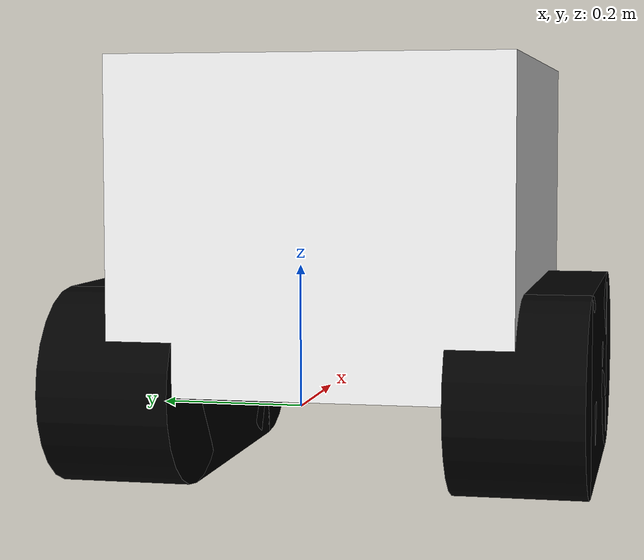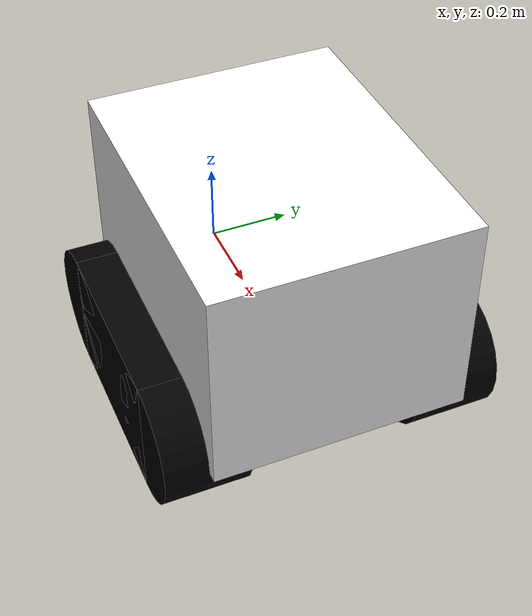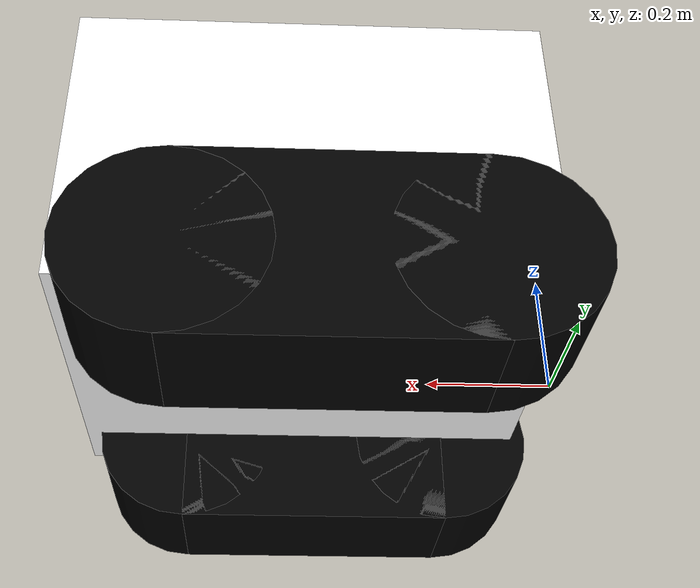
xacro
<?xml version="1.0"?>
<robot xmlns:xacro="http://www.ros.org/wiki/xacro">

<xacro:include filename="inertial_macros.xacro"/>

    <material name = "white">
        <color rgba= "1 1 1 1" />
    </material>

    <material name = "black">
        <color rgba= "0 0 0 1" />
    </material>

    <material name = "blue">
        <color rgba= ".2 .2 1 1" />
    </material>

    <link name="base_link"></link>

    <!-- BASE_FOOTPRINT LINK -->

    <!-- Assuming zed movement is negligable -->

    <joint name="base_footprint_joint" type="fixed">
        <parent link="base_link"/>
        <child link="base_footprint"/>
        <origin xyz="0 0 0" rpy="0 0 0"/>
    </joint>

    <link name="base_footprint">
    </link>

    <!-- CHASSIS LINK -->

    <joint name="chassis_joint" type="fixed">
        <parent link="base_link"/>
        <child link="chassis"/>
        <origin xyz="-0.1 0 0"/>
    </joint>

    <link name="chassis">
        <visual>
            <origin xyz=".5 0 .25"/>
            <geometry>
                <box size=".75 .6 0.5"/>
            </geometry>
            <material name="white"/>
        </visual>
        <collision>
            <origin xyz=".5 0 .25"/>
            <geometry>
                <box size=".75 .6 0.5"/>
            </geometry>
        </collision>
        <xacro:inertial_box mass="42" x=".75" y=".6" z=".5">
            <origin xyz=".5 0 .25" rpy="0 0 0"/>
        </xacro:inertial_box>
    </link>

    <gazebo reference="chassis">
        <material>Gazebo/White</material>
    </gazebo>

    <!-- LEFT DRIVE WHEEL 1 LINK -->

    <joint name="left_drive_wheel_1_joint" type="fixed">
        <parent link="base_link"/>
        <child link="left_drive_wheel_1_train"/>
        <origin xyz=".15 -.3 0" rpy="${pi/2} 0 0"/>
        <axis xyz="0 0 1"/>
    </joint>

    <link name="left_drive_wheel_1_train">
        <visual>
            <geometry>
                <cylinder radius=".15" length=".2"/>
            </geometry>
            <material name="black"/>
        </visual>
        <collision>
            <geometry>
                <cylinder radius=".15" length=".2"/>
            </geometry>
        </collision>
        <xacro:inertial_cylinder mass="3" length=".2" radius=".15">
            <origin xyz="0 0 0" rpy="0 0 0"/>
        </xacro:inertial_cylinder>
    </link>

    <gazebo reference="left_drive_wheel_1_train">
        <material>Gazebo/Black</material>
    </gazebo>

    <joint name="left_drive_wheel_3_joint" type="fixed">
        <parent link="base_link"/>
        <child link="left_drive_wheel_3_train"/>
        <origin xyz=".6 -.3 0" rpy="${pi/2} 0 0"/>
        <axis xyz="0 0 1"/>
    </joint>

    <link name="left_drive_wheel_3_train">
        <visual>
            <geometry>
                <cylinder radius=".15" length=".2"/>
            </geometry>
            <material name="black"/>
        </visual>
        <collision>
            <geometry>
                <cylinder radius=".15" length=".2"/>
            </geometry>
        </collision>
        <xacro:inertial_cylinder mass="3" length=".2" radius=".15">
            <origin xyz="0 0 0" rpy="0 0 0"/>
        </xacro:inertial_cylinder>
    </link>

    <gazebo reference="left_drive_wheel_3_train">
        <material>Gazebo/Black</material>
    </gazebo>

    <!-- RIGHT DRIVE WHEEL 1 LINK -->

    <joint name="right_drive_wheel_1_joint" type="fixed">
        <parent link="base_link"/>
        <child link="right_drive_wheel_1_train"/>
        <origin xyz=".15 .3 0" rpy="-${pi/2} 0 0"/>
        <axis xyz="0 0 -1"/>
    </joint>

    <link name="right_drive_wheel_1_train">
        <visual>
            <geometry>
                <cylinder radius=".15" length=".2"/>
            </geometry>
            <material name="black"/>
        </visual>
        <collision>
            <geometry>
                <cylinder radius=".15" length=".2"/>
            </geometry>
        </collision>
        <xacro:inertial_cylinder mass="3" length=".2" radius=".15">
            <origin xyz="0 0 0" rpy="0 0 0"/>
        </xacro:inertial_cylinder>
    </link>

    <gazebo reference="right_drive_wheel_1_train">
        <material>Gazebo/Black</material>
    </gazebo>

    <!-- RIGHT DRIVE WHEEL 3 LINK -->

    <joint name="right_drive_wheel_3_joint" type="fixed">
        <parent link="base_link"/>
        <child link="right_drive_wheel_3_train"/>
        <origin xyz=".6 .3 0" rpy="-${pi/2} 0 0"/>
        <axis xyz="0 0 -1"/>
    </joint>

    <link name="right_drive_wheel_3_train">
        <visual>
            <geometry>
                <cylinder radius=".15" length=".2"/>
            </geometry>
            <material name="black"/>
        </visual>
        <collision>
            <geometry>
                <cylinder radius=".15" length=".2"/>
            </geometry>
        </collision>
        <xacro:inertial_cylinder mass="3" length=".2" radius=".15">
            <origin xyz="0 0 0" rpy="0 0 0"/>
        </xacro:inertial_cylinder>
    </link>

    <gazebo reference="right_drive_wheel_3_train">
        <material>Gazebo/Black</material>
    </gazebo>

    <!-- RIGHT TREDS -->
    <joint name="right_tread_joint" type="fixed">
        <parent link="base_link"/>
        <child link="right_tred"/>
        <origin xyz=".375 .3 0"/>
    </joint>

    <link name="right_tred">
        <visual>
            <geometry>
                <box size=".45 .2 0.3"/>
            </geometry>
            <material name="black"/>
        </visual>
        <collision>
            <geometry>
                <box size=".45 .3 0.15"/>
            </geometry>
        </collision>
        <xacro:inertial_box mass="2" x=".45" y=".2" z=".3">
            <origin xyz=".5 0 .25" rpy="0 0 0"/>
        </xacro:inertial_box>
    </link>

    <gazebo reference="right_tred">
        <material>Gazebo/Black</material>
    </gazebo>

     <!-- LEFT TREDS -->
    <joint name="left_tread_joint" type="fixed">
        <parent link="base_link"/>
        <child link="left_tred"/>
        <origin xyz=".375 -.3 0"/>
    </joint>

    <link name="left_tred">
        <visual>
            <geometry>
                <box size=".45 .2 0.3"/>
            </geometry>
            <material name="black"/>
        </visual>
        <collision>
            <geometry>
                <box size=".45 .3 0.15"/>
            </geometry>
        </collision>
        <xacro:inertial_box mass="42" x=".45" y=".2" z=".3">
            <origin xyz=".5 0 .25" rpy="0 0 0"/>
        </xacro:inertial_box>
    </link>

    <gazebo reference="left_tred">
        <material>Gazebo/Black</material>
    </gazebo>
</robot>
